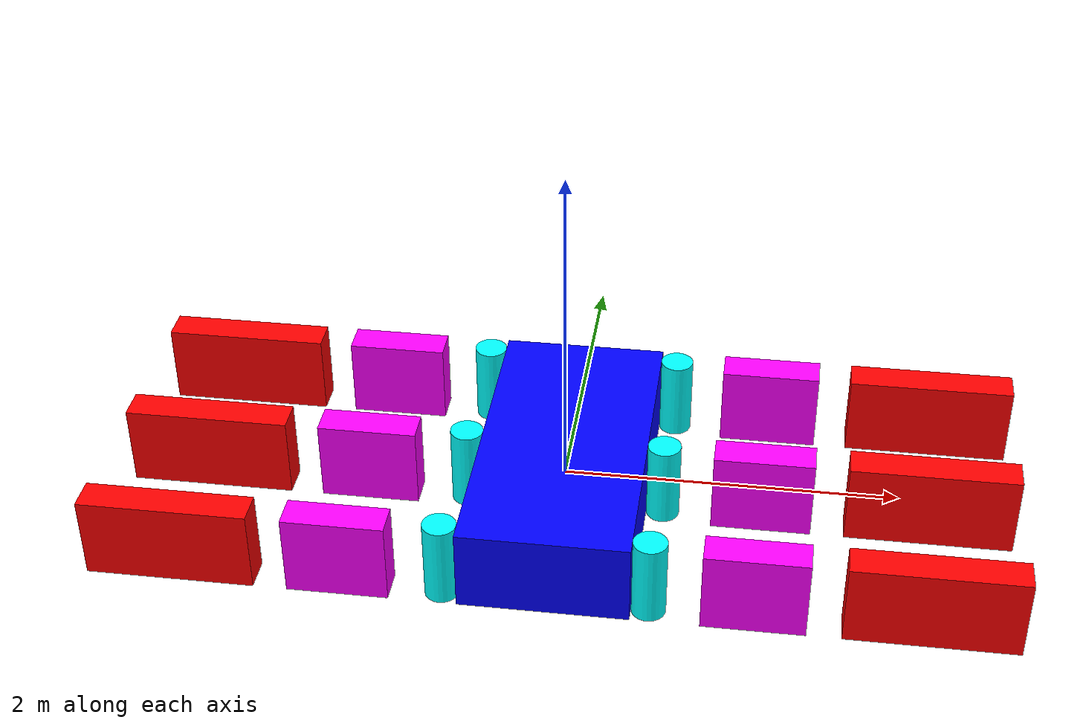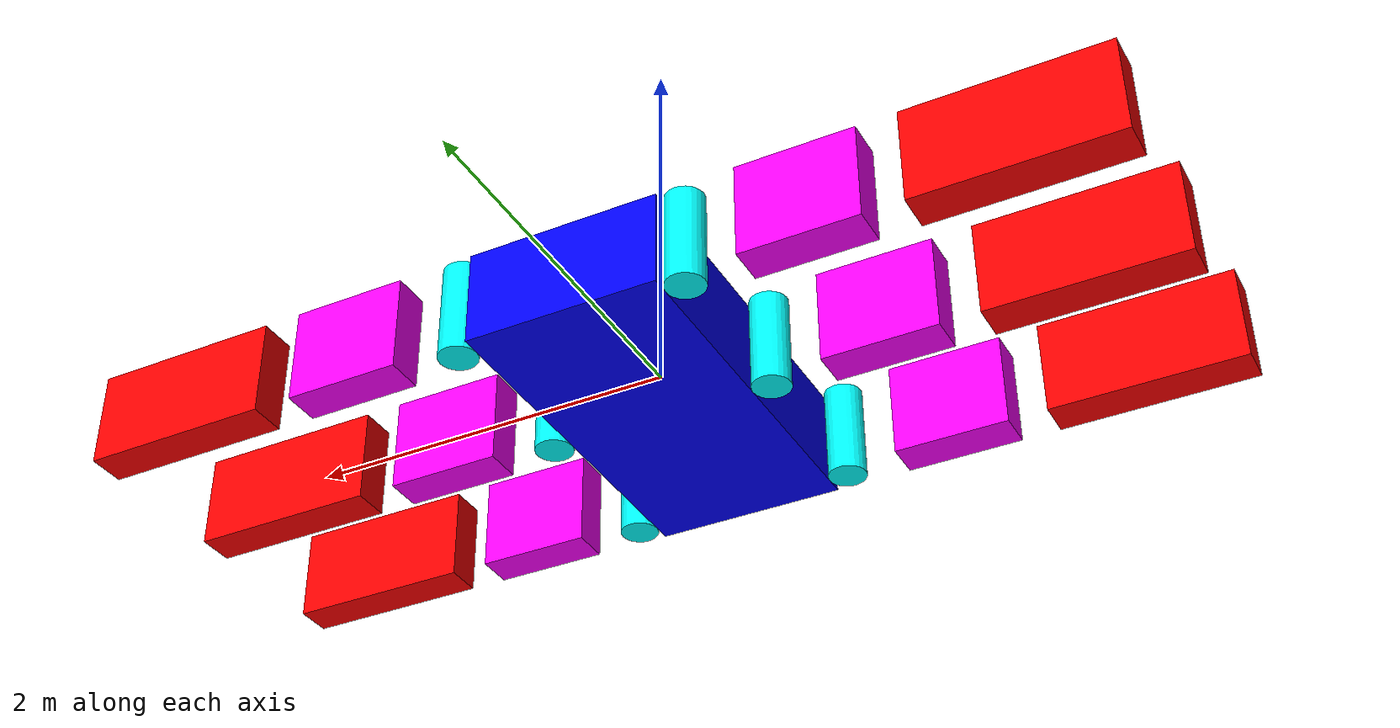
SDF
<?xml version="1.0" ?>
<sdf version="1.9">
  <model name="spiderbot" canonical_link="body">
    <link name="body">
        <self_collide>true</self_collide>
        <inertial>
          <inertia>
            <ixx>0.2</ixx>
            <ixy>0</ixy>
            <ixz>0</ixz>
            <iyy>0.2</iyy>
            <iyz>0</iyz>
            <izz>0.2</izz>
          </inertia>
          <mass>0.5</mass>
        </inertial>
        <collision name="collision1">
          <geometry>
            <box>
              <size>1 2 0.5</size>
            </box>
          </geometry>
        </collision>
        <visual name="visual1">
          <geometry>
            <box>
              <size>1 2 0.5</size>
            </box>
          </geometry>
          <!--let's add color to our link-->
          <material>
            <ambient>0.0 0.0 1.0 1</ambient>
            <diffuse>0.0 0.0 1.0 1</diffuse>
            <specular>0.0 0.0 1.0 1</specular>
          </material>
        </visual>
      </link>
    <link name='l1leg1'>
      <pose>-0.6 0.9 0 0 0 0</pose>
      <self_collide>true</self_collide>
        <inertial>
          <inertia>
            <ixx>0.2</ixx>
            <ixy>0</ixy>
            <ixz>0</ixz>
            <iyy>0.2</iyy>
            <iyz>0</iyz>
            <izz>0.2</izz>
          </inertia>
          <mass>0.1</mass>
        </inertial>
      <collision name="collision1">
          <geometry>
            <cylinder>
              <radius>0.1</radius>
              <length>0.5</length>
            </cylinder>
          </geometry>
        </collision>
        <visual name="visual1">
          <geometry>
            <cylinder>
              <radius>0.1</radius>
              <length>0.5</length>
            </cylinder>
          </geometry>
          <!--let's add color to our link-->
          <material>
            <ambient>0.0 1.0 1.0 1</ambient>
            <diffuse>0.0 1.0 1.0 1</diffuse>
            <specular>0.0 1.0 1.0 1</specular>
          </material>
        </visual>
    </link>
    <link name='l2leg1'>
      <pose>-0.6 0 0 0 0 0</pose>
      <self_collide>true</self_collide>
        <inertial>
          <inertia>
            <ixx>0.1</ixx>
            <ixy>0</ixy>
            <ixz>0</ixz>
            <iyy>0.1</iyy>
            <iyz>0</iyz>
            <izz>0.1</izz>
          </inertia>
          <mass>0.1</mass>
        </inertial>
      <collision name="collision1">
          <geometry>
            <cylinder>
              <radius>0.1</radius>
              <length>0.5</length>
            </cylinder>
          </geometry>
        </collision>
        <visual name="visual1">
          <geometry>
            <cylinder>
              <radius>0.1</radius>
              <length>0.5</length>
            </cylinder>
          </geometry>
          <!--let's add color to our link-->
          <material>
            <ambient>0.0 1.0 1.0 1</ambient>
            <diffuse>0.0 1.0 1.0 1</diffuse>
            <specular>0.0 1.0 1.0 1</specular>
          </material>
        </visual>
    </link>
    <link name='l3leg1'>
      <pose>-0.6 -0.9 0 0 0 0</pose>
      <self_collide>true</self_collide>
        <inertial>
          <inertia>
            <ixx>0.1</ixx>
            <ixy>0</ixy>
            <ixz>0</ixz>
            <iyy>0.1</iyy>
            <iyz>0</iyz>
            <izz>0.1</izz>
          </inertia>
          <mass>0.1</mass>
        </inertial>
      <collision name="collision1">
          <geometry>
            <cylinder>
              <radius>0.1</radius>
              <length>0.5</length>
            </cylinder>
          </geometry>
        </collision>
        <visual name="visual1">
          <geometry>
            <cylinder>
              <radius>0.1</radius>
              <length>0.5</length>
            </cylinder>
          </geometry>
          <!--let's add color to our link-->
          <material>
            <ambient>0.0 1.0 1.0 1</ambient>
            <diffuse>0.0 1.0 1.0 1</diffuse>
            <specular>0.0 1.0 1.0 1</specular>
          </material>
        </visual>
    </link>
    <link name='r1leg1'>
      <pose>0.6 0.9 0 0 0 0</pose>
      <self_collide>true</self_collide>
        <inertial>
          <inertia>
            <ixx>0.1</ixx>
            <ixy>0</ixy>
            <ixz>0</ixz>
            <iyy>0.1</iyy>
            <iyz>0</iyz>
            <izz>0.1</izz>
          </inertia>
          <mass>0.1</mass>
        </inertial>
      <collision name="collision1">
          <geometry>
            <cylinder>
              <radius>0.1</radius>
              <length>0.5</length>
            </cylinder>
          </geometry>
        </collision>
        <visual name="visual1">
          <geometry>
            <cylinder>
              <radius>0.1</radius>
              <length>0.5</length>
            </cylinder>
          </geometry>
          <!--let's add color to our link-->
          <material>
            <ambient>0.0 1.0 1.0 1</ambient>
            <diffuse>0.0 1.0 1.0 1</diffuse>
            <specular>0.0 1.0 1.0 1</specular>
          </material>
        </visual>
    </link>
    <link name='r2leg1'>
      <pose>0.6 0 0 0 0 0</pose>
      <self_collide>true</self_collide>
        <inertial>
          <inertia>
            <ixx>0.1</ixx>
            <ixy>0</ixy>
            <ixz>0</ixz>
            <iyy>0.1</iyy>
            <iyz>0</iyz>
            <izz>0.1</izz>
          </inertia>
          <mass>0.1</mass>
        </inertial>
      <collision name="collision1">
          <geometry>
            <cylinder>
              <radius>0.1</radius>
              <length>0.5</length>
            </cylinder>
          </geometry>
        </collision>
        <visual name="visual1">
          <geometry>
            <cylinder>
              <radius>0.1</radius>
              <length>0.5</length>
            </cylinder>
          </geometry>
          <!--let's add color to our link-->
          <material>
            <ambient>0.0 1.0 1.0 1</ambient>
            <diffuse>0.0 1.0 1.0 1</diffuse>
            <specular>0.0 1.0 1.0 1</specular>
          </material>
        </visual>
    </link>
    <link name='r3leg1'>
      <pose>0.6 -0.9 0 0 0 0</pose>
      <self_collide>true</self_collide>
        <inertial>
          <inertia>
            <ixx>0.1</ixx>
            <ixy>0</ixy>
            <ixz>0</ixz>
            <iyy>0.1</iyy>
            <iyz>0</iyz>
            <izz>0.1</izz>
          </inertia>
          <mass>0.1</mass>
        </inertial>
      <collision name="collision1">
          <geometry>
            <cylinder>
              <radius>0.1</radius>
              <length>0.5</length>
            </cylinder>
          </geometry>
      </collision>
        <visual name="visual1">
          <geometry>
            <cylinder>
              <radius>0.1</radius>
              <length>0.5</length>
            </cylinder>
          </geometry>
          <!--let's add color to our link-->
          <material>
            <ambient>0.0 1.0 1.0 1</ambient>
            <diffuse>0.0 1.0 1.0 1</diffuse>
            <specular>0.0 1.0 1.0 1</specular>
          </material>
        </visual>
    </link>
    <joint name='l1leg1j' type='revolute'>
      <pose>0 0 0 0 0 0</pose>
      <parent>body</parent>
      <child>l1leg1</child>
      <axis>
      	<xyz>0 0 1</xyz>
        <limit>
          <lower>-1.57</lower>
          <upper>1.57</upper>
          <effort>200</effort>    <!--force ?-->
          <velocity>1</velocity>  <!--set joint max speed radians-->
          <stiffness>1000000</stiffness>
          <dissipaton>1000</dissipaton>
        </limit>
        <dynamics>
          <damping>0.8</damping>
          <friction>0</friction>
          <spring_reference>0</spring_reference>
          <spring_stiffness>0</spring_stiffness>
        </dynamics>
      </axis>
    </joint>
    <joint name='l2leg1j' type='revolute'>
      <pose>0 0 0 0 0 0</pose>
      <parent>body</parent>
      <child>l2leg1</child>
      <axis>
      <xyz>0 0 1</xyz> <!-- The xyz unit vector is expressed in the joint frame -->
      <limit>
          <lower>-1.57</lower>
          <upper>1.57</upper>
          <effort>200</effort>    <!--force ?-->
          <velocity>1</velocity>  <!--set joint max speed radians-->
          <stiffness>1000000</stiffness>
          <dissipaton>1000</dissipaton>
        </limit>
        <dynamics>
          <damping>0.8</damping>
          <friction>0</friction>
          <spring_reference>0</spring_reference>
          <spring_stiffness>0</spring_stiffness>
        </dynamics>
      </axis>
    </joint>
    <joint name='l3leg1j' type='revolute'>
      <pose>0 0 0 0 0 0</pose>
      <parent>body</parent>
      <child>l3leg1</child>
      <axis>
      <xyz>0 0 1</xyz> <!-- The xyz unit vector is expressed in the joint frame -->
      <limit>
          <lower>-1.57</lower>
          <upper>1.57</upper>
          <effort>200</effort>    <!--force ?-->
          <velocity>1</velocity>  <!--set joint max speed radians-->
          <stiffness>1000000</stiffness>
          <dissipaton>1000</dissipaton>
        </limit>
        <dynamics>
          <damping>0.8</damping>
          <friction>0</friction>
          <spring_reference>0</spring_reference>
          <spring_stiffness>0</spring_stiffness>
        </dynamics>
      </axis>
    </joint>
    <joint name='r1leg1j' type='revolute'>
      <pose>0 0 0 0 0 0</pose>
      <parent>body</parent>
      <child>r1leg1</child>
      <axis>
      <xyz>0 0 1</xyz> <!-- The xyz unit vector is expressed in the joint frame -->
      <limit>
          <lower>-1.57</lower>
          <upper>1.57</upper>
          <effort>200</effort>    <!--force ?-->
          <velocity>1</velocity>  <!--set joint max speed radians-->
          <stiffness>1000000</stiffness>
          <dissipaton>1000</dissipaton>
        </limit>
        <dynamics>
          <damping>0.8</damping>
          <friction>0</friction>
          <spring_reference>0</spring_reference>
          <spring_stiffness>0</spring_stiffness>
        </dynamics>
      </axis>
    </joint>
    <joint name='r2leg1j' type='revolute'>
      <pose>0 0 0 0 0 0</pose>
      <parent>body</parent>
      <child>r2leg1</child>
      <axis>
      <xyz>0 0 1</xyz> <!-- The xyz unit vector is expressed in the joint frame -->
      <limit>
          <lower>-1.57</lower>
          <upper>1.57</upper>
          <effort>200</effort>    <!--force ?-->
          <velocity>1</velocity>  <!--set joint max speed radians-->
          <stiffness>1000000</stiffness>
          <dissipaton>1000</dissipaton>
        </limit>
        <dynamics>
          <damping>0.8</damping>
          <friction>0</friction>
          <spring_reference>0</spring_reference>
          <spring_stiffness>0</spring_stiffness>
        </dynamics>
      </axis>
    </joint>
    <joint name='r3leg1j' type='revolute'>
      <pose>0 0 0 0 0 0</pose>
      <parent>body</parent>
      <child>r3leg1</child>
      <axis>
      <xyz>0 0 1</xyz> <!-- The xyz unit vector is expressed in the joint frame -->
      <limit>
          <lower>-1.57</lower>
          <upper>1.57</upper>
          <effort>200</effort>    <!--force ?-->
          <velocity>1</velocity>  <!--set joint max speed radians-->
          <stiffness>1000000</stiffness>
          <dissipaton>1000</dissipaton>
        </limit>
        <dynamics>
          <damping>0.8</damping>
          <friction>0</friction>
          <spring_reference>0</spring_reference>
          <spring_stiffness>0</spring_stiffness>
        </dynamics>
      </axis>
    </joint>
    <link name='l1leg2'>
      <pose>-1.2 0.9 0 0 0 0</pose>
      <self_collide>true</self_collide>
        <inertial>
          <inertia>
            <ixx>0.1</ixx>
            <ixy>0</ixy>
            <ixz>0</ixz>
            <iyy>0.1</iyy>
            <iyz>0</iyz>
            <izz>0.1</izz>
          </inertia>
          <mass>0.1</mass>
        </inertial>
      <collision name="collision1">
          <geometry>
            <box>
              <size>0.6 0.2 0.5</size>
            </box>
          </geometry>
        </collision>
        <visual name="visual1">
          <geometry>
            <box>
              <size>0.6 0.2 0.5</size>
            </box>
          </geometry>
          <!--let's add color to our link-->
          <material>
            <ambient>1.0 0.0 1.0 1</ambient>
            <diffuse>1.0 0.0 1.0 1</diffuse>
            <specular>1.0 0.0 1.0 1</specular>
          </material>
        </visual>
    </link>
     <link name='l2leg2'>
      <pose>-1.2 0 0 0 0 0</pose>
      <self_collide>true</self_collide>
        <inertial>
          <inertia>
            <ixx>0.1</ixx>
            <ixy>0</ixy>
            <ixz>0</ixz>
            <iyy>0.1</iyy>
            <iyz>0</iyz>
            <izz>0.1</izz>
          </inertia>
          <mass>0.1</mass>
        </inertial>
      <collision name="collision1">
          <geometry>
            <box>
              <size>0.6 0.2 0.5</size>
            </box>
          </geometry>
        </collision>
        <visual name="visual1">
          <geometry>
            <box>
              <size>0.6 0.2 0.5</size>
            </box>
          </geometry>
          <!--let's add color to our link-->
          <material>
            <ambient>1.0 0.0 1.0 1</ambient>
            <diffuse>1.0 0.0 1.0 1</diffuse>
            <specular>1.0 0.0 1.0 1</specular>
          </material>
        </visual>
    </link>
    <link name='l3leg2'>
      <pose>-1.2 -0.9 0 0 0 0</pose>
      <self_collide>true</self_collide>
        <inertial>
          <inertia>
            <ixx>0.1</ixx>
            <ixy>0</ixy>
            <ixz>0</ixz>
            <iyy>0.1</iyy>
            <iyz>0</iyz>
            <izz>0.1</izz>
          </inertia>
          <mass>0.1</mass>
        </inertial>
      <collision name="collision1">
          <geometry>
            <box>
              <size>0.6 0.2 0.5</size>
            </box>
          </geometry>
        </collision>
        <visual name="visual1">
          <geometry>
            <box>
              <size>0.6 0.2 0.5</size>
            </box>
          </geometry>
          <!--let's add color to our link-->
          <material>
            <ambient>1.0 0.0 1.0 1</ambient>
            <diffuse>1.0 0.0 1.0 1</diffuse>
            <specular>1.0 0.0 1.0 1</specular>
          </material>
        </visual>
    </link>
     <link name='r1leg2'>
      <pose>1.2 0.9 0 0 0 0</pose>
      <self_collide>true</self_collide>
        <inertial>
          <inertia>
            <ixx>0.1</ixx>
            <ixy>0</ixy>
            <ixz>0</ixz>
            <iyy>0.1</iyy>
            <iyz>0</iyz>
            <izz>0.1</izz>
          </inertia>
          <mass>0.1</mass>
        </inertial>
      <collision name="collision1">
          <geometry>
            <box>
              <size>0.6 0.2 0.5</size>
            </box>
          </geometry>
        </collision>
        <visual name="visual1">
          <geometry>
            <box>
              <size>0.6 0.2 0.5</size>
            </box>
          </geometry>
          <!--let's add color to our link-->
          <material>
            <ambient>1.0 0.0 1.0 1</ambient>
            <diffuse>1.0 0.0 1.0 1</diffuse>
            <specular>1.0 0.0 1.0 1</specular>
          </material>
        </visual>
    </link>
    <link name='r2leg2'>
      <pose>1.2 0 0 0 0 0</pose>
      <self_collide>true</self_collide>
        <inertial>
          <inertia>
            <ixx>0.1</ixx>
            <ixy>0</ixy>
            <ixz>0</ixz>
            <iyy>0.1</iyy>
            <iyz>0</iyz>
            <izz>0.1</izz>
          </inertia>
          <mass>0.1</mass>
        </inertial>
      <collision name="collision1">
          <geometry>
            <box>
              <size>0.6 0.2 0.5</size>
            </box>
          </geometry>
        </collision>
        <visual name="visual1">
          <geometry>
            <box>
              <size>0.6 0.2 0.5</size>
            </box>
          </geometry>
          <!--let's add color to our link-->
          <material>
            <ambient>1.0 0.0 1.0 1</ambient>
            <diffuse>1.0 0.0 1.0 1</diffuse>
            <specular>1.0 0.0 1.0 1</specular>
          </material>
        </visual>
    </link>
    <link name='r3leg2'>
      <pose>1.2 -0.9 0 0 0 0</pose>
      <self_collide>true</self_collide>
        <inertial>
          <inertia>
            <ixx>0.1</ixx>
            <ixy>0</ixy>
            <ixz>0</ixz>
            <iyy>0.1</iyy>
            <iyz>0</iyz>
            <izz>0.1</izz>
          </inertia>
          <mass>0.1</mass>
        </inertial>
      <collision name="collision1">
          <geometry>
            <box>
              <size>0.6 0.2 0.5</size>
            </box>
          </geometry>
        </collision>
        <visual name="visual1">
          <geometry>
            <box>
              <size>0.6 0.2 0.5</size>
            </box>
          </geometry>
          <!--let's add color to our link-->
          <material>
            <ambient>1.0 0.0 1.0 1</ambient>
            <diffuse>1.0 0.0 1.0 1</diffuse>
            <specular>1.0 0.0 1.0 1</specular>
          </material>
        </visual>
    </link>
    <joint name='l1leg2j' type='revolute'>
      <pose>0.3 0 0 0 0 0</pose>
      <parent>l1leg1</parent>
      <child>l1leg2</child>
      <axis>
      <xyz>0 1 0</xyz> <!-- The xyz unit vector is expressed in the joint frame -->
      <limit>
          <lower>-1.57</lower>
          <upper>1.57</upper>
          <effort>200</effort>    <!--force ?-->
          <velocity>1</velocity>  <!--set joint max speed radians-->
          <stiffness>1000000</stiffness>
          <dissipaton>1000</dissipaton>
        </limit>
        <dynamics>
          <damping>0.8</damping>
          <friction>0</friction>
          <spring_reference>0</spring_reference>
          <spring_stiffness>0</spring_stiffness>
        </dynamics>
      </axis>
    </joint>
    <joint name='l2leg2j' type='revolute'>
      <pose>0.3 0 0 0 0 0</pose>
      <parent>l2leg1</parent>
      <child>l2leg2</child>
      <axis>
      <xyz>0 1 0</xyz> <!-- The xyz unit vector is expressed in the joint frame -->
      <limit>
          <lower>-1.57</lower>
          <upper>1.57</upper>
          <effort>200</effort>    <!--force ?-->
          <velocity>1</velocity>  <!--set joint max speed radians-->
          <stiffness>1000000</stiffness>
          <dissipaton>1000</dissipaton>
        </limit>
        <dynamics>
          <damping>0.8</damping>
          <friction>0</friction>
          <spring_reference>0</spring_reference>
          <spring_stiffness>0</spring_stiffness>
        </dynamics>
      </axis>
    </joint>
    <joint name='l3leg2j' type='revolute'>
      <pose>0.3 0 0 0 0 0</pose>
      <parent>l3leg1</parent>
      <child>l3leg2</child>
      <axis>
      <xyz>0 1 0</xyz> <!-- The xyz unit vector is expressed in the joint frame -->
      <limit>
          <lower>-1.57</lower>
          <upper>1.57</upper>
          <effort>200</effort>    <!--force ?-->
          <velocity>1</velocity>  <!--set joint max speed radians-->
          <stiffness>1000000</stiffness>
          <dissipaton>1000</dissipaton>
        </limit>
        <dynamics>
          <damping>0.8</damping>
          <friction>0</friction>
          <spring_reference>0</spring_reference>
          <spring_stiffness>0</spring_stiffness>
        </dynamics>
      </axis>
    </joint>
    <joint name='r1leg2j' type='revolute'>
      <pose>-0.3 0 0 0 0 0</pose>
      <parent>r1leg1</parent>
      <child>r1leg2</child>
      <axis>
      <xyz>0 1 0</xyz> <!-- The xyz unit vector is expressed in the joint frame -->
      <limit>
          <lower>-1.57</lower>
          <upper>1.57</upper>
          <effort>200</effort>    <!--force ?-->
          <velocity>1</velocity>  <!--set joint max speed radians-->
          <stiffness>1000000</stiffness>
          <dissipaton>1000</dissipaton>
        </limit>
        <dynamics>
          <damping>0.8</damping>
          <friction>0</friction>
          <spring_reference>0</spring_reference>
          <spring_stiffness>0</spring_stiffness>
        </dynamics>
      </axis>
    </joint>
    <joint name='r2leg2j' type='revolute'>
      <pose>-0.3 0 0 0 0 0</pose>
      <parent>r2leg1</parent>
      <child>r2leg2</child>
      <axis>
      <xyz>0 1 0</xyz> <!-- The xyz unit vector is expressed in the joint frame -->
      <limit>
          <lower>-1.57</lower>
          <upper>1.57</upper>
          <effort>200</effort>    <!--force ?-->
          <velocity>1</velocity>  <!--set joint max speed radians-->
          <stiffness>1000000</stiffness>
          <dissipaton>1000</dissipaton>
        </limit>
        <dynamics>
          <damping>0.8</damping>
          <friction>0</friction>
          <spring_reference>0</spring_reference>
          <spring_stiffness>0</spring_stiffness>
        </dynamics>
      </axis>
    </joint>
    <joint name='r3leg2j' type='revolute'>
      <pose>-0.3 0 0 0 0 0</pose>
      <parent>r3leg1</parent>
      <child>r3leg2</child>
      <axis>
      <xyz>0 1 0</xyz> <!-- The xyz unit vector is expressed in the joint frame -->
      <limit>
          <lower>-1.57</lower>
          <upper>1.57</upper>
          <effort>200</effort>    <!--force ?-->
          <velocity>1</velocity>  <!--set joint max speed radians-->
          <stiffness>1000000</stiffness>
          <dissipaton>1000</dissipaton>
        </limit>
        <dynamics>
          <damping>0.8</damping>
          <friction>0</friction>
          <spring_reference>0</spring_reference>
          <spring_stiffness>0</spring_stiffness>
        </dynamics>
      </axis>
    </joint>
    <link name='l1leg3'>
      <pose>-2.2 0.9 0 0 0 0</pose>
      <self_collide>true</self_collide>
        <inertial>
          <inertia>
            <ixx>0.1</ixx>
            <ixy>0</ixy>
            <ixz>0</ixz>
            <iyy>0.1</iyy>
            <iyz>0</iyz>
            <izz>0.1</izz>
          </inertia>
          <mass>0.1</mass>
        </inertial>
      <collision name="collision1">
          <geometry>
            <box>
              <size>1 0.2 0.5</size>
            </box>
          </geometry>
        </collision>
        <visual name="visual1">
          <geometry>
            <box>
              <size>1 0.2 0.5</size>
            </box>
          </geometry>
          <!--let's add color to our link-->
          <material>
            <ambient>1.0 0.0 0.0 1</ambient>
            <diffuse>1.0 0.0 0.0 1</diffuse>
            <specular>1.0 0.0 0.0 1</specular>
          </material>
        </visual>
    </link>
    <link name='l2leg3'>
      <pose>-2.2 0 0 0 0 0</pose>
      <self_collide>true</self_collide>
        <inertial>
          <inertia>
            <ixx>0.1</ixx>
            <ixy>0</ixy>
            <ixz>0</ixz>
            <iyy>0.1</iyy>
            <iyz>0</iyz>
            <izz>0.1</izz>
          </inertia>
          <mass>0.1</mass>
        </inertial>
      <collision name="collision1">
          <geometry>
            <box>
              <size>1 0.2 0.5</size>
            </box>
          </geometry>
        </collision>
        <visual name="visual1">
          <geometry>
            <box>
              <size>1 0.2 0.5</size>
            </box>
          </geometry>
          <!--let's add color to our link-->
          <material>
            <ambient>1.0 0.0 0.0 1</ambient>
            <diffuse>1.0 0.0 0.0 1</diffuse>
            <specular>1.0 0.0 0.0 1</specular>
          </material>
        </visual>
    </link>
    <link name='l3leg3'>
      <pose>-2.2 -0.9 0 0 0 0</pose>
      <self_collide>true</self_collide>
        <inertial>
          <inertia>
            <ixx>0.1</ixx>
            <ixy>0</ixy>
            <ixz>0</ixz>
            <iyy>0.1</iyy>
            <iyz>0</iyz>
            <izz>0.1</izz>
          </inertia>
          <mass>0.1</mass>
        </inertial>
      <collision name="collision1">
          <geometry>
            <box>
              <size>1 0.2 0.5</size>
            </box>
          </geometry>
        </collision>
        <visual name="visual1">
          <geometry>
            <box>
              <size>1 0.2 0.5</size>
            </box>
          </geometry>
          <!--let's add color to our link-->
          <material>
            <ambient>1.0 0.0 0.0 1</ambient>
            <diffuse>1.0 0.0 0.0 1</diffuse>
            <specular>1.0 0.0 0.0 1</specular>
          </material>
        </visual>
    </link>
    <link name='r1leg3'>
      <pose>2.2 0.9 0 0 0 0</pose>
      <self_collide>true</self_collide>
        <inertial>
          <inertia>
            <ixx>0.1</ixx>
            <ixy>0</ixy>
            <ixz>0</ixz>
            <iyy>0.1</iyy>
            <iyz>0</iyz>
            <izz>0.1</izz>
          </inertia>
          <mass>0.1</mass>
        </inertial>
      <collision name="collision1">
          <geometry>
            <box>
              <size>1 0.2 0.5</size>
            </box>
          </geometry>
        </collision>
        <visual name="visual1">
          <geometry>
            <box>
              <size>1 0.2 0.5</size>
            </box>
          </geometry>
          <!--let's add color to our link-->
          <material>
            <ambient>1.0 0.0 0.0 1</ambient>
            <diffuse>1.0 0.0 0.0 1</diffuse>
            <specular>1.0 0.0 0.0 1</specular>
          </material>
        </visual>
    </link>
    <link name='r2leg3'>
      <pose>2.2 0 0 0 0 0</pose>
      <self_collide>true</self_collide>
        <inertial>
          <inertia>
            <ixx>0.1</ixx>
            <ixy>0</ixy>
            <ixz>0</ixz>
            <iyy>0.1</iyy>
            <iyz>0</iyz>
            <izz>0.1</izz>
          </inertia>
          <mass>0.1</mass>
        </inertial>
      <collision name="collision1">
          <geometry>
            <box>
              <size>1 0.2 0.5</size>
            </box>
          </geometry>
        </collision>
        <visual name="visual1">
          <geometry>
            <box>
              <size>1 0.2 0.5</size>
            </box>
          </geometry>
          <!--let's add color to our link-->
          <material>
            <ambient>1.0 0.0 0.0 1</ambient>
            <diffuse>1.0 0.0 0.0 1</diffuse>
            <specular>1.0 0.0 0.0 1</specular>
          </material>
        </visual>
    </link>
    <link name='r3leg3'>
      <pose>2.2 -0.9 0 0 0 0</pose>
      <self_collide>true</self_collide>
        <inertial>
          <inertia>
            <ixx>0.1</ixx>
            <ixy>0</ixy>
            <ixz>0</ixz>
            <iyy>0.1</iyy>
            <iyz>0</iyz>
            <izz>0.1</izz>
          </inertia>
          <mass>0.1</mass>
        </inertial>
      <collision name="collision1">
          <geometry>
            <box>
              <size>1 0.2 0.5</size>
            </box>
          </geometry>
        </collision>
        <visual name="visual1">
          <geometry>
            <box>
              <size>1 0.2 0.5</size>
            </box>
          </geometry>
          <!--let's add color to our link-->
          <material>
            <ambient>1.0 0.0 0.0 1</ambient>
            <diffuse>1.0 0.0 0.0 1</diffuse>
            <specular>1.0 0.0 0.0 1</specular>
          </material>
        </visual>
    </link>
    <joint name='l1leg3j' type='revolute'>
      <pose>0.5 0 0 0 0 0</pose>
      <parent>l1leg2</parent>
      <child>l1leg3</child>
      <axis>
      <xyz>0 1 0</xyz> <!-- The xyz unit vector is expressed in the joint frame -->
      <limit>
          <lower>-1.57</lower>
          <upper>1.57</upper>
          <effort>200</effort>    <!--force ?-->
          <velocity>1</velocity>  <!--set joint max speed radians-->
          <stiffness>1000000</stiffness>
          <dissipaton>1000</dissipaton>
        </limit>
        <dynamics>
          <damping>0.8</damping>
          <friction>0</friction>
          <spring_reference>0</spring_reference>
          <spring_stiffness>0</spring_stiffness>
        </dynamics>
      </axis>
    </joint>
    <joint name='l2leg3j' type='revolute'>
      <pose>0.5 0 0 0 0 0</pose>
      <parent>l2leg2</parent>
      <child>l2leg3</child>
      <axis>
      <xyz>0 1 0</xyz> <!-- The xyz unit vector is expressed in the joint frame -->
      <limit>
          <lower>-1.57</lower>
          <upper>1.57</upper>
          <effort>200</effort>    <!--force ?-->
          <velocity>1</velocity>  <!--set joint max speed radians-->
          <stiffness>1000000</stiffness>
          <dissipaton>1000</dissipaton>
        </limit>
        <dynamics>
          <damping>0.8</damping>
          <friction>0</friction>
          <spring_reference>0</spring_reference>
          <spring_stiffness>0</spring_stiffness>
        </dynamics>
      </axis>
    </joint>
    <joint name='l3leg3j' type='revolute'>
      <pose>0.5 0 0 0 0 0</pose>
      <parent>l3leg2</parent>
      <child>l3leg3</child>
      <axis>
      <xyz>0 1 0</xyz> <!-- The xyz unit vector is expressed in the joint frame -->
      <limit>
          <lower>-1.57</lower>
          <upper>1.57</upper>
          <effort>200</effort>    <!--force ?-->
          <velocity>1</velocity>  <!--set joint max speed radians-->
          <stiffness>1000000</stiffness>
          <dissipaton>1000</dissipaton>
        </limit>
        <dynamics>
          <damping>0.8</damping>
          <friction>0</friction>
          <spring_reference>0</spring_reference>
          <spring_stiffness>0</spring_stiffness>
        </dynamics>
      </axis>
    </joint>
    <joint name='r1leg3j' type='revolute'>
      <pose>-0.5 0 0 0 0 0</pose>
      <parent>r1leg2</parent>
      <child>r1leg3</child>
      <axis>
      <xyz>0 1 0</xyz> <!-- The xyz unit vector is expressed in the joint frame -->
      <limit>
          <lower>-1.57</lower>
          <upper>1.57</upper>
          <effort>200</effort>    <!--force ?-->
          <velocity>1</velocity>  <!--set joint max speed radians-->
          <stiffness>1000000</stiffness>
          <dissipaton>1000</dissipaton>
        </limit>
        <dynamics>
          <damping>0.8</damping>
          <friction>0</friction>
          <spring_reference>0</spring_reference>
          <spring_stiffness>0</spring_stiffness>
        </dynamics>
      </axis>
    </joint>
    <joint name='r2leg3j' type='revolute'>
      <pose>-0.5 0 0 0 0 0</pose>
      <parent>r2leg2</parent>
      <child>r2leg3</child>
      <axis>
      <xyz>0 1 0</xyz> <!-- The xyz unit vector is expressed in the joint frame -->
      <limit>
          <lower>-1.57</lower>
          <upper>1.57</upper>
          <effort>200</effort>    <!--force ?-->
          <velocity>1</velocity>  <!--set joint max speed radians-->
          <stiffness>1000000</stiffness>
          <dissipaton>1000</dissipaton>
        </limit>
        <dynamics>
          <damping>0.8</damping>
          <friction>0</friction>
          <spring_reference>0</spring_reference>
          <spring_stiffness>0</spring_stiffness>
        </dynamics>
      </axis>
    </joint>
    <joint name='r3leg3j' type='revolute'>
      <pose>-0.5 0 0 0 0 0</pose>
      <parent>r3leg2</parent>
      <child>r3leg3</child>
      <axis>
      <xyz>0 1 0</xyz> <!-- The xyz unit vector is expressed in the joint frame -->
      <limit>
          <lower>-1.57</lower>
          <upper>1.57</upper>
          <effort>200</effort>    <!--force ?-->
          <velocity>1</velocity>  <!--set joint max speed radians-->
          <stiffness>1000000</stiffness>
          <dissipaton>1000</dissipaton>
        </limit>
        <dynamics>
          <damping>0.8</damping>
          <friction>0</friction>
          <spring_reference>0</spring_reference>
          <spring_stiffness>0</spring_stiffness>
        </dynamics>
      </axis>
    </joint>
    <!-- Joint controller plugins -->
        <!-- Used values from
    https://github.com/mkrizmancic/franka_gazebo/blob/4a88ce6ca7d3d7bb87bd3fbe91e12873cc42f9b9/config/default.yaml-->
    <plugin filename="ignition-gazebo-joint-position-controller-system" name="ignition::gazebo::systems::JointPositionController">
            <joint_name>l1leg1j</joint_name>

            <p_gain>100</p_gain>
            <i_gain>1</i_gain>
            <d_gain>10</d_gain>
            <i_max>50</i_max>
            <i_min>-50</i_min>
            <cmd_max>300</cmd_max>
            <cmd_min>-300</cmd_min>
    </plugin>
    <plugin filename="ignition-gazebo-joint-position-controller-system" name="ignition::gazebo::systems::JointPositionController">
            <joint_name>l2leg1j</joint_name>
            <p_gain>100</p_gain>
            <i_gain>1</i_gain>
            <d_gain>10</d_gain>
            <i_max>50</i_max>
            <i_min>-50</i_min>
            <cmd_max>300</cmd_max>
            <cmd_min>-300</cmd_min>
    </plugin>
    <plugin filename="ignition-gazebo-joint-position-controller-system" name="ignition::gazebo::systems::JointPositionController">
            <joint_name>l3leg1j</joint_name>
            <p_gain>100</p_gain>
            <i_gain>1</i_gain>
            <d_gain>10</d_gain>
            <i_max>50</i_max>
            <i_min>-50</i_min>
            <cmd_max>300</cmd_max>
            <cmd_min>-300</cmd_min>
    </plugin>
    <plugin filename="ignition-gazebo-joint-position-controller-system" name="ignition::gazebo::systems::JointPositionController">
            <joint_name>r1leg1j</joint_name>
            <p_gain>80</p_gain>
            <d_gain>1</d_gain>
            <i_gain>0.3</i_gain>
            <i_min>-1</i_min>
            <i_max>1</i_max>
            <cmd_min>-1000</cmd_min>
            <cmd_max>1000</cmd_max>
    </plugin>
    <plugin filename="ignition-gazebo-joint-position-controller-system" name="ignition::gazebo::systems::JointPositionController">
            <joint_name>r2leg1j</joint_name>
            <p_gain>80</p_gain>
            <d_gain>1</d_gain>
            <i_gain>0.3</i_gain>
            <i_min>-1</i_min>
            <i_max>1</i_max>
            <cmd_min>-1000</cmd_min>
            <cmd_max>1000</cmd_max>
    </plugin>
    <plugin filename="ignition-gazebo-joint-position-controller-system" name="ignition::gazebo::systems::JointPositionController">
            <joint_name>r3leg1j</joint_name>
            <p_gain>80</p_gain>
            <d_gain>1</d_gain>
            <i_gain>0.3</i_gain>
            <i_min>-1</i_min>
            <i_max>1</i_max>
            <cmd_min>-1000</cmd_min>
            <cmd_max>1000</cmd_max>
    </plugin>
    <plugin filename="ignition-gazebo-joint-position-controller-system" name="ignition::gazebo::systems::JointPositionController">
            <joint_name>l1leg2j</joint_name>
            <p_gain>100</p_gain>
            <d_gain>1</d_gain>
            <i_gain>0.3</i_gain>
            <i_min>-1</i_min>
            <i_max>1</i_max>
            <cmd_min>-1000</cmd_min>
            <cmd_max>1000</cmd_max>
    </plugin>
    <plugin filename="ignition-gazebo-joint-position-controller-system" name="ignition::gazebo::systems::JointPositionController">
            <joint_name>l2leg2j</joint_name>
            <p_gain>100</p_gain>
            <d_gain>1</d_gain>
            <i_gain>0.3</i_gain>
            <i_min>-1</i_min>
            <i_max>1</i_max>
            <cmd_min>-1000</cmd_min>
            <cmd_max>1000</cmd_max>
    </plugin>
    <plugin filename="ignition-gazebo-joint-position-controller-system" name="ignition::gazebo::systems::JointPositionController">
            <joint_name>l3leg2j</joint_name>
            <p_gain>100</p_gain>
            <d_gain>1</d_gain>
            <i_gain>0.3</i_gain>
            <i_min>-1</i_min>
            <i_max>1</i_max>
            <cmd_min>-1000</cmd_min>
            <cmd_max>1000</cmd_max>
    </plugin>
    <plugin filename="ignition-gazebo-joint-position-controller-system" name="ignition::gazebo::systems::JointPositionController">
            <joint_name>r1leg2j</joint_name>
            <p_gain>100</p_gain>
            <d_gain>1</d_gain>
            <i_gain>0.3</i_gain>
            <i_min>-1</i_min>
            <i_max>1</i_max>
            <cmd_min>-1000</cmd_min>
            <cmd_max>1000</cmd_max>
    </plugin>
    <plugin filename="ignition-gazebo-joint-position-controller-system" name="ignition::gazebo::systems::JointPositionController">
            <joint_name>r2leg2j</joint_name>
            <p_gain>100</p_gain>
            <d_gain>1</d_gain>
            <i_gain>0.3</i_gain>
            <i_min>-1</i_min>
            <i_max>1</i_max>
            <cmd_min>-1000</cmd_min>
            <cmd_max>1000</cmd_max>
    </plugin>
    <plugin filename="ignition-gazebo-joint-position-controller-system" name="ignition::gazebo::systems::JointPositionController">
            <joint_name>r3leg2j</joint_name>
            <p_gain>100</p_gain>
            <d_gain>1</d_gain>
            <i_gain>0.3</i_gain>
            <i_min>-1</i_min>
            <i_max>1</i_max>
            <cmd_min>-1000</cmd_min>
            <cmd_max>1000</cmd_max>
    </plugin>
    <plugin filename="ignition-gazebo-joint-position-controller-system" name="ignition::gazebo::systems::JointPositionController">
            <joint_name>l1leg3j</joint_name>
            <p_gain>100</p_gain>
            <d_gain>1</d_gain>
            <i_gain>0.3</i_gain>
            <i_min>-1</i_min>
            <i_max>1</i_max>
            <cmd_min>-1000</cmd_min>
            <cmd_max>1000</cmd_max>
    </plugin>
    <plugin filename="ignition-gazebo-joint-position-controller-system" name="ignition::gazebo::systems::JointPositionController">
            <joint_name>l2leg3j</joint_name>
            <p_gain>100</p_gain>
            <d_gain>1</d_gain>
            <i_gain>0.3</i_gain>
            <i_min>-1</i_min>
            <i_max>1</i_max>
            <cmd_min>-1000</cmd_min>
            <cmd_max>1000</cmd_max>
    </plugin>
    <plugin filename="ignition-gazebo-joint-position-controller-system" name="ignition::gazebo::systems::JointPositionController">
            <joint_name>l3leg3j</joint_name>
            <p_gain>100</p_gain>
            <d_gain>1</d_gain>
            <i_gain>0.3</i_gain>
            <i_min>-1</i_min>
            <i_max>1</i_max>
            <cmd_min>-1000</cmd_min>
            <cmd_max>1000</cmd_max>
    </plugin>
    <plugin filename="ignition-gazebo-joint-position-controller-system" name="ignition::gazebo::systems::JointPositionController">
            <joint_name>r1leg3j</joint_name>
            <p_gain>100</p_gain>
            <d_gain>1</d_gain>
            <i_gain>0.3</i_gain>
            <i_min>-1</i_min>
            <i_max>1</i_max>
            <cmd_min>-1000</cmd_min>
            <cmd_max>1000</cmd_max>
    </plugin>
    <plugin filename="ignition-gazebo-joint-position-controller-system" name="ignition::gazebo::systems::JointPositionController">
            <joint_name>r2leg3j</joint_name>
            <p_gain>100</p_gain>
            <d_gain>1</d_gain>
            <i_gain>0.3</i_gain>
            <i_min>-1</i_min>
            <i_max>1</i_max>
            <cmd_min>-1000</cmd_min>
            <cmd_max>1000</cmd_max>
    </plugin>
    <plugin filename="ignition-gazebo-joint-position-controller-system" name="ignition::gazebo::systems::JointPositionController">
            <joint_name>r3leg3j</joint_name>
            <p_gain>100</p_gain>
            <d_gain>1</d_gain>
            <i_gain>0.3</i_gain>
            <i_min>-1</i_min>
            <i_max>1</i_max>
            <cmd_min>-1000</cmd_min>
            <cmd_max>1000</cmd_max>
    </plugin>
    <plugin name='ignition::gazebo::systems::JointStatePublisher' filename='ignition-gazebo-joint-state-publisher-system'/>

  </model>
</sdf>
